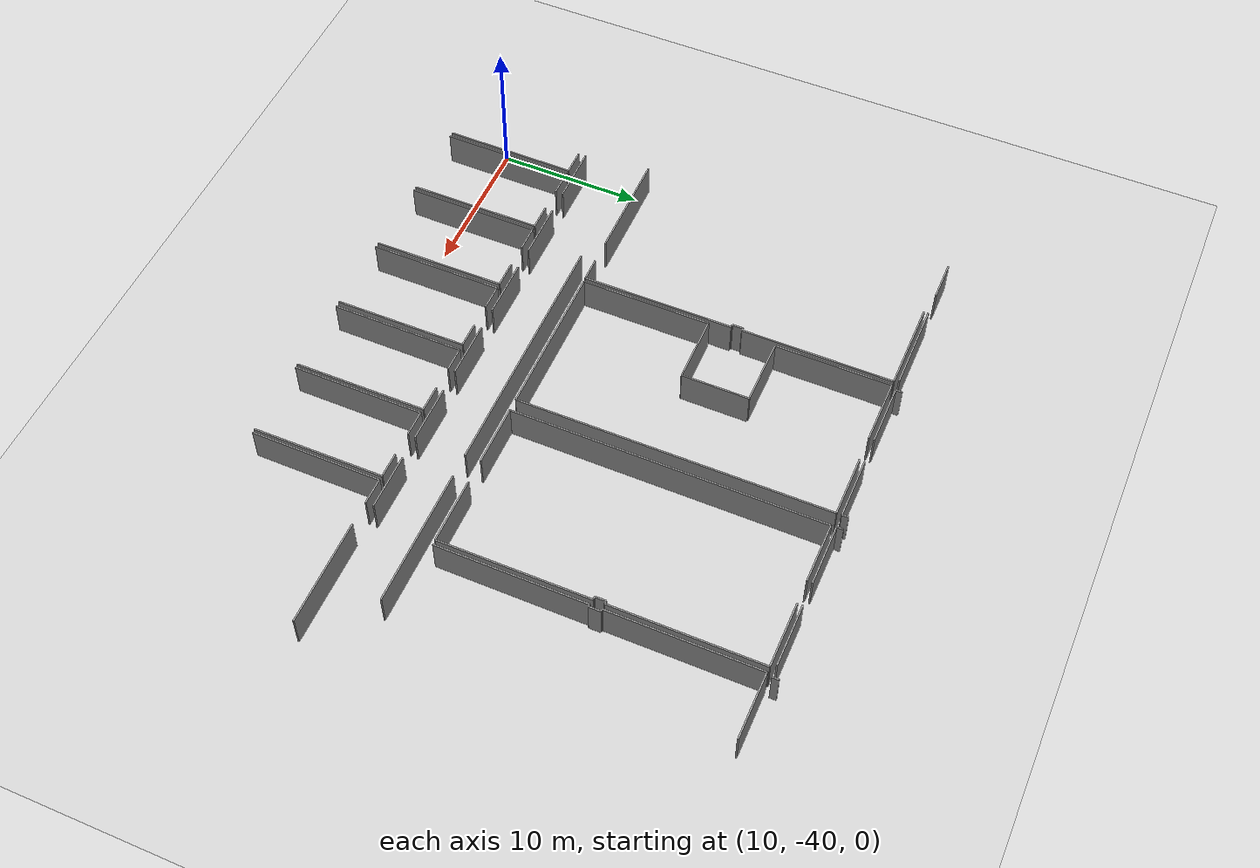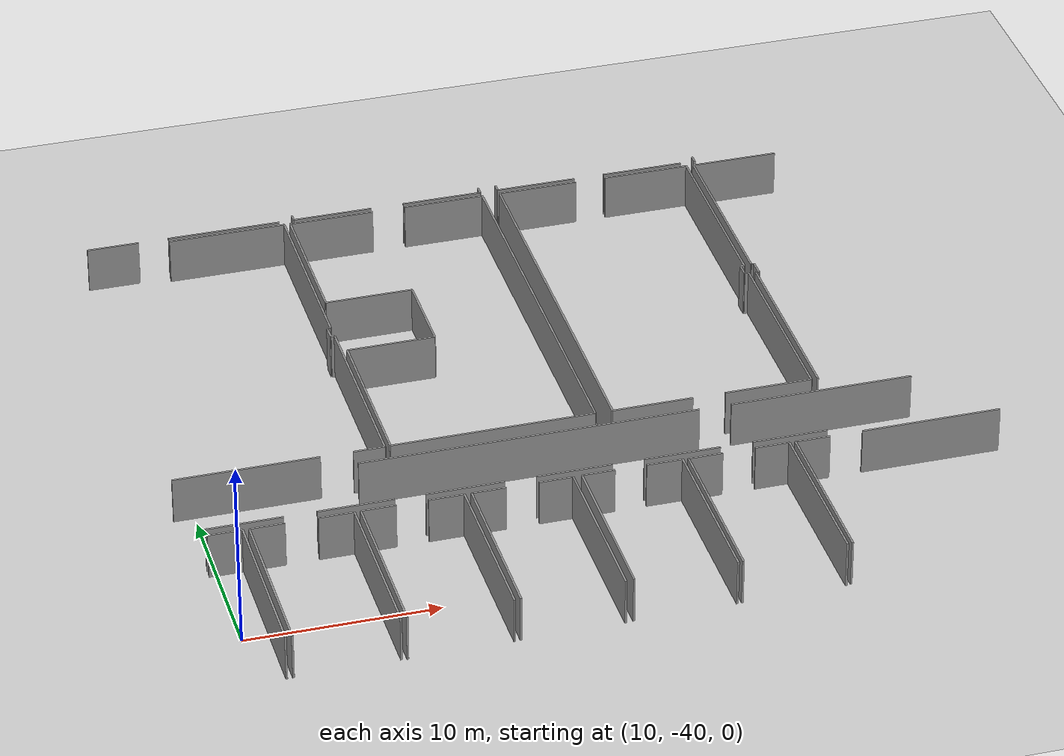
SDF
<sdf version="1.6">
 <world name="default">
  <model name="ground_plane">
   <static>1</static>
   <link name="link">
    <collision name="collision">
     <geometry><plane><normal>0 0 1</normal><size>100 100</size></plane></geometry>
     <surface><friction><ode><mu>100</mu><mu2>50</mu2></ode></friction></surface>
    </collision>
    <visual name="visual">
     <cast_shadows>0</cast_shadows>
     <geometry><plane><normal>0 0 1</normal><size>100 100</size></plane></geometry>
     <material>
      <script><uri>file://media/materials/scripts/gazebo.material</uri><name>Gazebo/Grey</name></script>
     </material>
    </visual>
   </link>
  </model>
  <model name="50015848">
   <static>1</static>
   <link name="Wall_614">
    <collision name="Wall_614_Collision">
     <geometry><box><size>0.465337553679 0.1 2.5</size></box></geometry>
     <pose>0.23266877684 0 1.25 0 0 0</pose>
    </collision>
    <visual name="Wall_614_Visual">
     <pose>0.23266877684 0 1.25 0 0 0</pose>
     <geometry><box><size>0.465337553679 0.1 2.5</size></box></geometry>
     <material>
      <script><uri>file://media/materials/scripts/gazebo.material</uri><name>Gazebo/Grey</name></script>
      <ambient>1 1 1 1</ambient>
     </material>
    </visual>
    <pose>174.505388553 -51.2470107644 0 0 0 1.57079632679</pose>
   </link>
   <link name="Wall_617">
    <collision name="Wall_617_Collision">
     <geometry><box><size>4.34966285863 0.1 2.5</size></box></geometry>
     <pose>2.17483142931 0 1.25 0 0 0</pose>
    </collision>
    <visual name="Wall_617_Visual">
     <pose>2.17483142931 0 1.25 0 0 0</pose>
     <geometry><box><size>4.34966285863 0.1 2.5</size></box></geometry>
     <material>
      <script><uri>file://media/materials/scripts/gazebo.material</uri><name>Gazebo/Grey</name></script>
      <ambient>1 1 1 1</ambient>
     </material>
    </visual>
    <pose>173.704114837 -51.2396526461 0 0 0 3.14159265359</pose>
   </link>
   <link name="Wall_618">
    <collision name="Wall_618_Collision">
     <geometry><box><size>4.28826062963 0.1 2.5</size></box></geometry>
     <pose>2.14413031481 0 1.25 0 0 0</pose>
    </collision>
    <visual name="Wall_618_Visual">
     <pose>2.14413031481 0 1.25 0 0 0</pose>
     <geometry><box><size>4.28826062963 0.1 2.5</size></box></geometry>
     <material>
      <script><uri>file://media/materials/scripts/gazebo.material</uri><name>Gazebo/Grey</name></script>
      <ambient>1 1 1 1</ambient>
     </material>
    </visual>
    <pose>167.708263294 -51.2396526461 0 0 0 3.14159265359</pose>
   </link>
   <link name="Wall_619">
    <collision name="Wall_619_Collision">
     <geometry><box><size>0.456964522452 0.1 2.5</size></box></geometry>
     <pose>0.228482261226 0 1.25 0 0 0</pose>
    </collision>
    <visual name="Wall_619_Visual">
     <pose>0.228482261226 0 1.25 0 0 0</pose>
     <geometry><box><size>0.456964522452 0.1 2.5</size></box></geometry>
     <material>
      <script><uri>file://media/materials/scripts/gazebo.material</uri><name>Gazebo/Grey</name></script>
      <ambient>1 1 1 1</ambient>
     </material>
    </visual>
    <pose>163.420002664 -51.2396526461 0 0 0 1.57079632679</pose>
   </link>
   <link name="Wall_621">
    <collision name="Wall_621_Collision">
     <geometry><box><size>0.449860132319 0.1 2.5</size></box></geometry>
     <pose>0.22493006616 0 1.25 0 0 0</pose>
    </collision>
    <visual name="Wall_621_Visual">
     <pose>0.22493006616 0 1.25 0 0 0</pose>
     <geometry><box><size>0.449860132319 0.1 2.5</size></box></geometry>
     <material>
      <script><uri>file://media/materials/scripts/gazebo.material</uri><name>Gazebo/Grey</name></script>
      <ambient>1 1 1 1</ambient>
     </material>
    </visual>
    <pose>162.462432366 -50.7826881236 0 0 0 -1.57079632679</pose>
   </link>
   <link name="Wall_622">
    <collision name="Wall_622_Collision">
     <geometry><box><size>4.28420097812 0.1 2.5</size></box></geometry>
     <pose>2.14210048906 0 1.25 0 0 0</pose>
    </collision>
    <visual name="Wall_622_Visual">
     <pose>2.14210048906 0 1.25 0 0 0</pose>
     <geometry><box><size>4.28420097812 0.1 2.5</size></box></geometry>
     <material>
      <script><uri>file://media/materials/scripts/gazebo.material</uri><name>Gazebo/Grey</name></script>
      <ambient>1 1 1 1</ambient>
     </material>
    </visual>
    <pose>162.462432366 -51.2325482559 0 0 0 3.14159265359</pose>
   </link>
   <link name="Wall_623">
    <collision name="Wall_623_Collision">
     <geometry><box><size>4.25121630965 0.1 2.5</size></box></geometry>
     <pose>2.12560815482 0 1.25 0 0 0</pose>
    </collision>
    <visual name="Wall_623_Visual">
     <pose>2.12560815482 0 1.25 0 0 0</pose>
     <geometry><box><size>4.25121630965 0.1 2.5</size></box></geometry>
     <material>
      <script><uri>file://media/materials/scripts/gazebo.material</uri><name>Gazebo/Grey</name></script>
      <ambient>1 1 1 1</ambient>
     </material>
    </visual>
    <pose>156.410506886 -51.2325482559 0 0 0 3.14159265359</pose>
   </link>
   <link name="Wall_624">
    <collision name="Wall_624_Collision">
     <geometry><box><size>0.46254654327 0.1 2.5</size></box></geometry>
     <pose>0.231273271635 0 1.25 0 0 0</pose>
    </collision>
    <visual name="Wall_624_Visual">
     <pose>0.231273271635 0 1.25 0 0 0</pose>
     <geometry><box><size>0.46254654327 0.1 2.5</size></box></geometry>
     <material>
      <script><uri>file://media/materials/scripts/gazebo.material</uri><name>Gazebo/Grey</name></script>
      <ambient>1 1 1 1</ambient>
     </material>
    </visual>
    <pose>152.159290576 -51.2325482559 0 0 0 1.57079632679</pose>
   </link>
   <link name="Wall_627">
    <collision name="Wall_627_Collision">
     <geometry><box><size>6.03670178688 0.1 2.5</size></box></geometry>
     <pose>3.01835089344 0 1.25 0 0 0</pose>
    </collision>
    <visual name="Wall_627_Visual">
     <pose>3.01835089344 0 1.25 0 0 0</pose>
     <geometry><box><size>6.03670178688 0.1 2.5</size></box></geometry>
     <material>
      <script><uri>file://media/materials/scripts/gazebo.material</uri><name>Gazebo/Grey</name></script>
      <ambient>1 1 1 1</ambient>
     </material>
    </visual>
    <pose>151.351927383 -51.2619807293 0 0 0 3.14159265359</pose>
   </link>
   <link name="Wall_628">
    <collision name="Wall_628_Collision">
     <geometry><box><size>2.75016016594 0.1 2.5</size></box></geometry>
     <pose>1.37508008297 0 1.25 0 0 0</pose>
    </collision>
    <visual name="Wall_628_Visual">
     <pose>1.37508008297 0 1.25 0 0 0</pose>
     <geometry><box><size>2.75016016594 0.1 2.5</size></box></geometry>
     <material>
      <script><uri>file://media/materials/scripts/gazebo.material</uri><name>Gazebo/Grey</name></script>
      <ambient>1 1 1 1</ambient>
     </material>
    </visual>
    <pose>143.694917189 -51.2619807293 0 0 0 3.14159265359</pose>
   </link>
   <link name="Wall_1331">
    <collision name="Wall_1331_Collision">
     <geometry><box><size>10.3566784439 0.1 2.5</size></box></geometry>
     <pose>5.17833922194 0 1.25 0 0 0</pose>
    </collision>
    <visual name="Wall_1331_Visual">
     <pose>5.17833922194 0 1.25 0 0 0</pose>
     <geometry><box><size>10.3566784439 0.1 2.5</size></box></geometry>
     <material>
      <script><uri>file://media/materials/scripts/gazebo.material</uri><name>Gazebo/Grey</name></script>
      <ambient>1 1 1 1</ambient>
     </material>
    </visual>
    <pose>174.32346542 -73.1612633128 0 0 0 1.57079632679</pose>
   </link>
   <link name="Wall_1332">
    <collision name="Wall_1332_Collision">
     <geometry><box><size>0.163908429486 0.1 2.5</size></box></geometry>
     <pose>0.0819542147429 0 1.25 0 0 0</pose>
    </collision>
    <visual name="Wall_1332_Visual">
     <pose>0.0819542147429 0 1.25 0 0 0</pose>
     <geometry><box><size>0.163908429486 0.1 2.5</size></box></geometry>
     <material>
      <script><uri>file://media/materials/scripts/gazebo.material</uri><name>Gazebo/Grey</name></script>
      <ambient>1 1 1 1</ambient>
     </material>
    </visual>
    <pose>174.32346542 -62.8045848689 0 0 0 0.0</pose>
   </link>
   <link name="Wall_1333">
    <collision name="Wall_1333_Collision">
     <geometry><box><size>0.820049603867 0.1 2.5</size></box></geometry>
     <pose>0.410024801933 0 1.25 0 0 0</pose>
    </collision>
    <visual name="Wall_1333_Visual">
     <pose>0.410024801933 0 1.25 0 0 0</pose>
     <geometry><box><size>0.820049603867 0.1 2.5</size></box></geometry>
     <material>
      <script><uri>file://media/materials/scripts/gazebo.material</uri><name>Gazebo/Grey</name></script>
      <ambient>1 1 1 1</ambient>
     </material>
    </visual>
    <pose>174.48737385 -62.8045848689 0 0 0 1.57079632679</pose>
   </link>
   <link name="Wall_1334">
    <collision name="Wall_1334_Collision">
     <geometry><box><size>0.163908429486 0.1 2.5</size></box></geometry>
     <pose>0.0819542147429 0 1.25 0 0 0</pose>
    </collision>
    <visual name="Wall_1334_Visual">
     <pose>0.0819542147429 0 1.25 0 0 0</pose>
     <geometry><box><size>0.163908429486 0.1 2.5</size></box></geometry>
     <material>
      <script><uri>file://media/materials/scripts/gazebo.material</uri><name>Gazebo/Grey</name></script>
      <ambient>1 1 1 1</ambient>
     </material>
    </visual>
    <pose>174.48737385 -61.9845352651 0 0 0 3.14159265359</pose>
   </link>
   <link name="Wall_1335">
    <collision name="Wall_1335_Collision">
     <geometry><box><size>10.3767229732 0.1 2.5</size></box></geometry>
     <pose>5.18836148659 0 1.25 0 0 0</pose>
    </collision>
    <visual name="Wall_1335_Visual">
     <pose>5.18836148659 0 1.25 0 0 0</pose>
     <geometry><box><size>10.3767229732 0.1 2.5</size></box></geometry>
     <material>
      <script><uri>file://media/materials/scripts/gazebo.material</uri><name>Gazebo/Grey</name></script>
      <ambient>1 1 1 1</ambient>
     </material>
    </visual>
    <pose>174.32346542 -61.9845352651 0 0 0 1.57079632679</pose>
   </link>
   <link name="Wall_1336">
    <collision name="Wall_1336_Collision">
     <geometry><box><size>4.6148088475 0.1 2.5</size></box></geometry>
     <pose>2.30740442375 0 1.25 0 0 0</pose>
    </collision>
    <visual name="Wall_1336_Visual">
     <pose>2.30740442375 0 1.25 0 0 0</pose>
     <geometry><box><size>4.6148088475 0.1 2.5</size></box></geometry>
     <material>
      <script><uri>file://media/materials/scripts/gazebo.material</uri><name>Gazebo/Grey</name></script>
      <ambient>1 1 1 1</ambient>
     </material>
    </visual>
    <pose>174.32346542 -51.6078122919 0 0 0 0.0</pose>
   </link>
   <link name="Wall_1343">
    <collision name="Wall_1343_Collision">
     <geometry><box><size>4.57421233246 0.1 2.5</size></box></geometry>
     <pose>2.28710616623 0 1.25 0 0 0</pose>
    </collision>
    <visual name="Wall_1343_Visual">
     <pose>2.28710616623 0 1.25 0 0 0</pose>
     <geometry><box><size>4.57421233246 0.1 2.5</size></box></geometry>
     <material>
      <script><uri>file://media/materials/scripts/gazebo.material</uri><name>Gazebo/Grey</name></script>
      <ambient>1 1 1 1</ambient>
     </material>
    </visual>
    <pose>173.971036924 -73.1711587133 0 0 0 3.14159265359</pose>
   </link>
   <link name="Wall_1344">
    <collision name="Wall_1344_Collision">
     <geometry><box><size>4.2385298987 0.1 2.5</size></box></geometry>
     <pose>2.11926494935 0 1.25 0 0 0</pose>
    </collision>
    <visual name="Wall_1344_Visual">
     <pose>2.11926494935 0 1.25 0 0 0</pose>
     <geometry><box><size>4.2385298987 0.1 2.5</size></box></geometry>
     <material>
      <script><uri>file://media/materials/scripts/gazebo.material</uri><name>Gazebo/Grey</name></script>
      <ambient>1 1 1 1</ambient>
     </material>
    </visual>
    <pose>167.675532354 -73.1711587133 0 0 0 3.14159265359</pose>
   </link>
   <link name="Wall_1345">
    <collision name="Wall_1345_Collision">
     <geometry><box><size>21.583644679 0.1 2.5</size></box></geometry>
     <pose>10.7918223395 0 1.25 0 0 0</pose>
    </collision>
    <visual name="Wall_1345_Visual">
     <pose>10.7918223395 0 1.25 0 0 0</pose>
     <geometry><box><size>21.583644679 0.1 2.5</size></box></geometry>
     <material>
      <script><uri>file://media/materials/scripts/gazebo.material</uri><name>Gazebo/Grey</name></script>
      <ambient>1 1 1 1</ambient>
     </material>
    </visual>
    <pose>163.437002455 -73.1711587133 0 0 0 1.57079632679</pose>
   </link>
   <link name="Wall_1346">
    <collision name="Wall_1346_Collision">
     <geometry><box><size>4.26238035129 0.1 2.5</size></box></geometry>
     <pose>2.13119017564 0 1.25 0 0 0</pose>
    </collision>
    <visual name="Wall_1346_Visual">
     <pose>2.13119017564 0 1.25 0 0 0</pose>
     <geometry><box><size>4.26238035129 0.1 2.5</size></box></geometry>
     <material>
      <script><uri>file://media/materials/scripts/gazebo.material</uri><name>Gazebo/Grey</name></script>
      <ambient>1 1 1 1</ambient>
     </material>
    </visual>
    <pose>163.437002455 -51.5875140343 0 0 0 0.0</pose>
   </link>
   <link name="Wall_1347">
    <collision name="Wall_1347_Collision">
     <geometry><box><size>4.5853763741 0.1 2.5</size></box></geometry>
     <pose>2.29268818705 0 1.25 0 0 0</pose>
    </collision>
    <visual name="Wall_1347_Visual">
     <pose>2.29268818705 0 1.25 0 0 0</pose>
     <geometry><box><size>4.5853763741 0.1 2.5</size></box></geometry>
     <material>
      <script><uri>file://media/materials/scripts/gazebo.material</uri><name>Gazebo/Grey</name></script>
      <ambient>1 1 1 1</ambient>
     </material>
    </visual>
    <pose>169.347347589 -51.5875140343 0 0 0 0.0</pose>
   </link>
   <link name="Wall_1348">
    <collision name="Wall_1348_Collision">
     <geometry><box><size>10.4142747496 0.1 2.5</size></box></geometry>
     <pose>5.2071373748 0 1.25 0 0 0</pose>
    </collision>
    <visual name="Wall_1348_Visual">
     <pose>5.2071373748 0 1.25 0 0 0</pose>
     <geometry><box><size>10.4142747496 0.1 2.5</size></box></geometry>
     <material>
      <script><uri>file://media/materials/scripts/gazebo.material</uri><name>Gazebo/Grey</name></script>
      <ambient>1 1 1 1</ambient>
     </material>
    </visual>
    <pose>173.932723963 -51.5875140343 0 0 0 -1.57079632679</pose>
   </link>
   <link name="Wall_1349">
    <collision name="Wall_1349_Collision">
     <geometry><box><size>0.209579508909 0.1 2.5</size></box></geometry>
     <pose>0.104789754455 0 1.25 0 0 0</pose>
    </collision>
    <visual name="Wall_1349_Visual">
     <pose>0.104789754455 0 1.25 0 0 0</pose>
     <geometry><box><size>0.209579508909 0.1 2.5</size></box></geometry>
     <material>
      <script><uri>file://media/materials/scripts/gazebo.material</uri><name>Gazebo/Grey</name></script>
      <ambient>1 1 1 1</ambient>
     </material>
    </visual>
    <pose>173.932723963 -62.0017887839 0 0 0 3.14159265359</pose>
   </link>
   <link name="Wall_1350">
    <collision name="Wall_1350_Collision">
     <geometry><box><size>0.733274552963 0.1 2.5</size></box></geometry>
     <pose>0.366637276481 0 1.25 0 0 0</pose>
    </collision>
    <visual name="Wall_1350_Visual">
     <pose>0.366637276481 0 1.25 0 0 0</pose>
     <geometry><box><size>0.733274552963 0.1 2.5</size></box></geometry>
     <material>
      <script><uri>file://media/materials/scripts/gazebo.material</uri><name>Gazebo/Grey</name></script>
      <ambient>1 1 1 1</ambient>
     </material>
    </visual>
    <pose>173.723144454 -62.0017887839 0 0 0 -1.57079632679</pose>
   </link>
   <link name="Wall_1351">
    <collision name="Wall_1351_Collision">
     <geometry><box><size>0.224549473831 0.1 2.5</size></box></geometry>
     <pose>0.112274736916 0 1.25 0 0 0</pose>
    </collision>
    <visual name="Wall_1351_Visual">
     <pose>0.112274736916 0 1.25 0 0 0</pose>
     <geometry><box><size>0.224549473831 0.1 2.5</size></box></geometry>
     <material>
      <script><uri>file://media/materials/scripts/gazebo.material</uri><name>Gazebo/Grey</name></script>
      <ambient>1 1 1 1</ambient>
     </material>
    </visual>
    <pose>173.723144454 -62.7350633369 0 0 0 0.0</pose>
   </link>
   <link name="Wall_1352">
    <collision name="Wall_1352_Collision">
     <geometry><box><size>10.4361214827 0.1 2.5</size></box></geometry>
     <pose>5.21806074135 0 1.25 0 0 0</pose>
    </collision>
    <visual name="Wall_1352_Visual">
     <pose>5.21806074135 0 1.25 0 0 0</pose>
     <geometry><box><size>10.4361214827 0.1 2.5</size></box></geometry>
     <material>
      <script><uri>file://media/materials/scripts/gazebo.material</uri><name>Gazebo/Grey</name></script>
      <ambient>1 1 1 1</ambient>
     </material>
    </visual>
    <pose>173.947693928 -62.7350633369 0 0 0 -1.56855957479</pose>
   </link>
   <link name="Wall_1353">
    <collision name="Wall_1353_Collision">
     <geometry><box><size>10.6515106344 0.1 2.5</size></box></geometry>
     <pose>5.32575531719 0 1.25 0 0 0</pose>
    </collision>
    <visual name="Wall_1353_Visual">
     <pose>5.32575531719 0 1.25 0 0 0</pose>
     <geometry><box><size>10.6515106344 0.1 2.5</size></box></geometry>
     <material>
      <script><uri>file://media/materials/scripts/gazebo.material</uri><name>Gazebo/Grey</name></script>
      <ambient>1 1 1 1</ambient>
     </material>
    </visual>
    <pose>162.540073201 -73.1747109084 0 0 0 3.14159265359</pose>
   </link>
   <link name="Wall_1354">
    <collision name="Wall_1354_Collision">
     <geometry><box><size>8.94468090505 0.1 2.5</size></box></geometry>
     <pose>4.47234045252 0 1.25 0 0 0</pose>
    </collision>
    <visual name="Wall_1354_Visual">
     <pose>4.47234045252 0 1.25 0 0 0</pose>
     <geometry><box><size>8.94468090505 0.1 2.5</size></box></geometry>
     <material>
      <script><uri>file://media/materials/scripts/gazebo.material</uri><name>Gazebo/Grey</name></script>
      <ambient>1 1 1 1</ambient>
     </material>
    </visual>
    <pose>151.888562566 -73.1747109084 0 0 0 1.57079632679</pose>
   </link>
   <link name="Wall_1355">
    <collision name="Wall_1355_Collision">
     <geometry><box><size>4.63536083324 0.1 2.5</size></box></geometry>
     <pose>2.31768041662 0 1.25 0 0 0</pose>
    </collision>
    <visual name="Wall_1355_Visual">
     <pose>2.31768041662 0 1.25 0 0 0</pose>
     <geometry><box><size>4.63536083324 0.1 2.5</size></box></geometry>
     <material>
      <script><uri>file://media/materials/scripts/gazebo.material</uri><name>Gazebo/Grey</name></script>
      <ambient>1 1 1 1</ambient>
     </material>
    </visual>
    <pose>151.888562566 -64.2300300034 0 0 0 0.0</pose>
   </link>
   <link name="Wall_1356">
    <collision name="Wall_1356_Collision">
     <geometry><box><size>4.65489790611 0.1 2.5</size></box></geometry>
     <pose>2.32744895305 0 1.25 0 0 0</pose>
    </collision>
    <visual name="Wall_1356_Visual">
     <pose>2.32744895305 0 1.25 0 0 0</pose>
     <geometry><box><size>4.65489790611 0.1 2.5</size></box></geometry>
     <material>
      <script><uri>file://media/materials/scripts/gazebo.material</uri><name>Gazebo/Grey</name></script>
      <ambient>1 1 1 1</ambient>
     </material>
    </visual>
    <pose>156.523923399 -64.2300300034 0 0 0 1.57079632679</pose>
   </link>
   <link name="Wall_1357">
    <collision name="Wall_1357_Collision">
     <geometry><box><size>4.64221149516 0.1 2.5</size></box></geometry>
     <pose>2.32110574758 0 1.25 0 0 0</pose>
    </collision>
    <visual name="Wall_1357_Visual">
     <pose>2.32110574758 0 1.25 0 0 0</pose>
     <geometry><box><size>4.64221149516 0.1 2.5</size></box></geometry>
     <material>
      <script><uri>file://media/materials/scripts/gazebo.material</uri><name>Gazebo/Grey</name></script>
      <ambient>1 1 1 1</ambient>
     </material>
    </visual>
    <pose>156.523923399 -59.5751320973 0 0 0 3.14159265359</pose>
   </link>
   <link name="Wall_1358">
    <collision name="Wall_1358_Collision">
     <geometry><box><size>7.99446872483 0.1 2.5</size></box></geometry>
     <pose>3.99723436241 0 1.25 0 0 0</pose>
    </collision>
    <visual name="Wall_1358_Visual">
     <pose>3.99723436241 0 1.25 0 0 0</pose>
     <geometry><box><size>7.99446872483 0.1 2.5</size></box></geometry>
     <material>
      <script><uri>file://media/materials/scripts/gazebo.material</uri><name>Gazebo/Grey</name></script>
      <ambient>1 1 1 1</ambient>
     </material>
    </visual>
    <pose>151.881711904 -59.5751320973 0 0 0 1.57079632679</pose>
   </link>
   <link name="Wall_1359">
    <collision name="Wall_1359_Collision">
     <geometry><box><size>4.51686975496 0.1 2.5</size></box></geometry>
     <pose>2.25843487748 0 1.25 0 0 0</pose>
    </collision>
    <visual name="Wall_1359_Visual">
     <pose>2.25843487748 0 1.25 0 0 0</pose>
     <geometry><box><size>4.51686975496 0.1 2.5</size></box></geometry>
     <material>
      <script><uri>file://media/materials/scripts/gazebo.material</uri><name>Gazebo/Grey</name></script>
      <ambient>1 1 1 1</ambient>
     </material>
    </visual>
    <pose>151.881711904 -51.5806633724 0 0 0 0.0</pose>
   </link>
   <link name="Wall_1360">
    <collision name="Wall_1360_Collision">
     <geometry><box><size>4.30855888715 0.1 2.5</size></box></geometry>
     <pose>2.15427944357 0 1.25 0 0 0</pose>
    </collision>
    <visual name="Wall_1360_Visual">
     <pose>2.15427944357 0 1.25 0 0 0</pose>
     <geometry><box><size>4.30855888715 0.1 2.5</size></box></geometry>
     <material>
      <script><uri>file://media/materials/scripts/gazebo.material</uri><name>Gazebo/Grey</name></script>
      <ambient>1 1 1 1</ambient>
     </material>
    </visual>
    <pose>158.168335987 -51.5806633724 0 0 0 0.0</pose>
   </link>
   <link name="Wall_1361">
    <collision name="Wall_1361_Collision">
     <geometry><box><size>21.5941399571 0.1 2.5</size></box></geometry>
     <pose>10.7970699786 0 1.25 0 0 0</pose>
    </collision>
    <visual name="Wall_1361_Visual">
     <pose>10.7970699786 0 1.25 0 0 0</pose>
     <geometry><box><size>21.5941399571 0.1 2.5</size></box></geometry>
     <material>
      <script><uri>file://media/materials/scripts/gazebo.material</uri><name>Gazebo/Grey</name></script>
      <ambient>1 1 1 1</ambient>
     </material>
    </visual>
    <pose>162.476894874 -51.5806633724 0 0 0 -1.56787060635</pose>
   </link>
   <link name="Wall_1362">
    <collision name="Wall_1362_Collision">
     <geometry><box><size>1.62715906856 0.1 2.5</size></box></geometry>
     <pose>0.813579534282 0 1.25 0 0 0</pose>
    </collision>
    <visual name="Wall_1362_Visual">
     <pose>0.813579534282 0 1.25 0 0 0</pose>
     <geometry><box><size>1.62715906856 0.1 2.5</size></box></geometry>
     <material>
      <script><uri>file://media/materials/scripts/gazebo.material</uri><name>Gazebo/Grey</name></script>
      <ambient>1 1 1 1</ambient>
     </material>
    </visual>
    <pose>151.598043755 -73.2038896536 0 0 0 3.14159265359</pose>
   </link>
   <link name="Wall_1363">
    <collision name="Wall_1363_Collision">
     <geometry><box><size>7.55754873168 0.1 2.5</size></box></geometry>
     <pose>3.77877436584 0 1.25 0 0 0</pose>
    </collision>
    <visual name="Wall_1363_Visual">
     <pose>3.77877436584 0 1.25 0 0 0</pose>
     <geometry><box><size>7.55754873168 0.1 2.5</size></box></geometry>
     <material>
      <script><uri>file://media/materials/scripts/gazebo.material</uri><name>Gazebo/Grey</name></script>
      <ambient>1 1 1 1</ambient>
     </material>
    </visual>
    <pose>148.289174051 -73.2038896536 0 0 0 3.14159265359</pose>
   </link>
   <link name="Wall_1371">
    <collision name="Wall_1371_Collision">
     <geometry><box><size>6.25110213195 0.1 2.5</size></box></geometry>
     <pose>3.12555106598 0 1.25 0 0 0</pose>
    </collision>
    <visual name="Wall_1371_Visual">
     <pose>3.12555106598 0 1.25 0 0 0</pose>
     <geometry><box><size>6.25110213195 0.1 2.5</size></box></geometry>
     <material>
      <script><uri>file://media/materials/scripts/gazebo.material</uri><name>Gazebo/Grey</name></script>
      <ambient>1 1 1 1</ambient>
     </material>
    </visual>
    <pose>145.307867478 -51.5573203763 0 0 0 0.0</pose>
   </link>
   <link name="Wall_1372">
    <collision name="Wall_1372_Collision">
     <geometry><box><size>10.4393938433 0.1 2.5</size></box></geometry>
     <pose>5.21969692164 0 1.25 0 0 0</pose>
    </collision>
    <visual name="Wall_1372_Visual">
     <pose>5.21969692164 0 1.25 0 0 0</pose>
     <geometry><box><size>10.4393938433 0.1 2.5</size></box></geometry>
     <material>
      <script><uri>file://media/materials/scripts/gazebo.material</uri><name>Gazebo/Grey</name></script>
      <ambient>1 1 1 1</ambient>
     </material>
    </visual>
    <pose>151.55896961 -51.5573203763 0 0 0 -1.57079632679</pose>
   </link>
   <link name="Wall_1373">
    <collision name="Wall_1373_Collision">
     <geometry><box><size>0.179893307284 0.1 2.5</size></box></geometry>
     <pose>0.0899466536419 0 1.25 0 0 0</pose>
    </collision>
    <visual name="Wall_1373_Visual">
     <pose>0.0899466536419 0 1.25 0 0 0</pose>
     <geometry><box><size>0.179893307284 0.1 2.5</size></box></geometry>
     <material>
      <script><uri>file://media/materials/scripts/gazebo.material</uri><name>Gazebo/Grey</name></script>
      <ambient>1 1 1 1</ambient>
     </material>
    </visual>
    <pose>151.55896961 -61.9967142196 0 0 0 3.14159265359</pose>
   </link>
   <link name="Wall_1374">
    <collision name="Wall_1374_Collision">
     <geometry><box><size>0.754333995141 0.1 2.5</size></box></geometry>
     <pose>0.377166997571 0 1.25 0 0 0</pose>
    </collision>
    <visual name="Wall_1374_Visual">
     <pose>0.377166997571 0 1.25 0 0 0</pose>
     <geometry><box><size>0.754333995141 0.1 2.5</size></box></geometry>
     <material>
      <script><uri>file://media/materials/scripts/gazebo.material</uri><name>Gazebo/Grey</name></script>
      <ambient>1 1 1 1</ambient>
     </material>
    </visual>
    <pose>151.379076302 -61.9967142196 0 0 0 -1.57079632679</pose>
   </link>
   <link name="Wall_1375">
    <collision name="Wall_1375_Collision">
     <geometry><box><size>0.202982575215 0.1 2.5</size></box></geometry>
     <pose>0.101491287607 0 1.25 0 0 0</pose>
    </collision>
    <visual name="Wall_1375_Visual">
     <pose>0.101491287607 0 1.25 0 0 0</pose>
     <geometry><box><size>0.202982575215 0.1 2.5</size></box></geometry>
     <material>
      <script><uri>file://media/materials/scripts/gazebo.material</uri><name>Gazebo/Grey</name></script>
      <ambient>1 1 1 1</ambient>
     </material>
    </visual>
    <pose>151.379076302 -62.7510482147 0 0 0 0.0</pose>
   </link>
   <link name="Wall_1376">
    <collision name="Wall_1376_Collision">
     <geometry><box><size>10.4528536612 0.1 2.5</size></box></geometry>
     <pose>5.22642683061 0 1.25 0 0 0</pose>
    </collision>
    <visual name="Wall_1376_Visual">
     <pose>5.22642683061 0 1.25 0 0 0</pose>
     <geometry><box><size>10.4528536612 0.1 2.5</size></box></geometry>
     <material>
      <script><uri>file://media/materials/scripts/gazebo.material</uri><name>Gazebo/Grey</name></script>
      <ambient>1 1 1 1</ambient>
     </material>
    </visual>
    <pose>151.582058878 -62.7510482147 0 0 0 -1.56926709042</pose>
   </link>
   <link name="Wall_1478">
    <collision name="Wall_1478_Collision">
     <geometry><box><size>17.7168266212 0.1 2.5</size></box></geometry>
     <pose>8.85841331058 0 1.25 0 0 0</pose>
    </collision>
    <visual name="Wall_1478_Visual">
     <pose>8.85841331058 0 1.25 0 0 0</pose>
     <geometry><box><size>17.7168266212 0.1 2.5</size></box></geometry>
     <material>
      <script><uri>file://media/materials/scripts/gazebo.material</uri><name>Gazebo/Grey</name></script>
      <ambient>1 1 1 1</ambient>
     </material>
    </visual>
    <pose>149.970884687 -74.2462051773 0 0 0 0.0</pose>
   </link>
   <link name="Wall_1479">
    <collision name="Wall_1479_Collision">
     <geometry><box><size>9.59752361258 0.1 2.5</size></box></geometry>
     <pose>4.79876180629 0 1.25 0 0 0</pose>
    </collision>
    <visual name="Wall_1479_Visual">
     <pose>4.79876180629 0 1.25 0 0 0</pose>
     <geometry><box><size>9.59752361258 0.1 2.5</size></box></geometry>
     <material>
      <script><uri>file://media/materials/scripts/gazebo.material</uri><name>Gazebo/Grey</name></script>
      <ambient>1 1 1 1</ambient>
     </material>
    </visual>
    <pose>169.364601108 -74.2462051773 0 0 0 0.0</pose>
   </link>
   <link name="Wall_1498">
    <collision name="Wall_1498_Collision">
     <geometry><box><size>3.89447443371 0.1 2.5</size></box></geometry>
     <pose>1.94723721686 0 1.25 0 0 0</pose>
    </collision>
    <visual name="Wall_1498_Visual">
     <pose>1.94723721686 0 1.25 0 0 0</pose>
     <geometry><box><size>3.89447443371 0.1 2.5</size></box></geometry>
     <material>
      <script><uri>file://media/materials/scripts/gazebo.material</uri><name>Gazebo/Grey</name></script>
      <ambient>1 1 1 1</ambient>
     </material>
    </visual>
    <pose>173.299418328 -77.7331920913 0 0 0 3.14159265359</pose>
   </link>
   <link name="Wall_1499">
    <collision name="Wall_1499_Collision">
     <geometry><box><size>3.97135408407 0.1 2.5</size></box></geometry>
     <pose>1.98567704204 0 1.25 0 0 0</pose>
    </collision>
    <visual name="Wall_1499_Visual">
     <pose>1.98567704204 0 1.25 0 0 0</pose>
     <geometry><box><size>3.97135408407 0.1 2.5</size></box></geometry>
     <material>
      <script><uri>file://media/materials/scripts/gazebo.material</uri><name>Gazebo/Grey</name></script>
      <ambient>1 1 1 1</ambient>
     </material>
    </visual>
    <pose>167.709785663 -77.7331920913 0 0 0 3.14159265359</pose>
   </link>
   <link name="Wall_1500">
    <collision name="Wall_1500_Collision">
     <geometry><box><size>3.92060844027 0.1 2.5</size></box></geometry>
     <pose>1.96030422013 0 1.25 0 0 0</pose>
    </collision>
    <visual name="Wall_1500_Visual">
     <pose>1.96030422013 0 1.25 0 0 0</pose>
     <geometry><box><size>3.92060844027 0.1 2.5</size></box></geometry>
     <material>
      <script><uri>file://media/materials/scripts/gazebo.material</uri><name>Gazebo/Grey</name></script>
      <ambient>1 1 1 1</ambient>
     </material>
    </visual>
    <pose>162.102645751 -77.7331920913 0 0 0 3.14159265359</pose>
   </link>
   <link name="Wall_1501">
    <collision name="Wall_1501_Collision">
     <geometry><box><size>4.03301004129 0.1 2.5</size></box></geometry>
     <pose>2.01650502065 0 1.25 0 0 0</pose>
    </collision>
    <visual name="Wall_1501_Visual">
     <pose>2.01650502065 0 1.25 0 0 0</pose>
     <geometry><box><size>4.03301004129 0.1 2.5</size></box></geometry>
     <material>
      <script><uri>file://media/materials/scripts/gazebo.material</uri><name>Gazebo/Grey</name></script>
      <ambient>1 1 1 1</ambient>
     </material>
    </visual>
    <pose>156.558176709 -77.7331920913 0 0 0 3.14159265359</pose>
   </link>
   <link name="Wall_1502">
    <collision name="Wall_1502_Collision">
     <geometry><box><size>3.93151875369 0.1 2.5</size></box></geometry>
     <pose>1.96575937684 0 1.25 0 0 0</pose>
    </collision>
    <visual name="Wall_1502_Visual">
     <pose>1.96575937684 0 1.25 0 0 0</pose>
     <geometry><box><size>3.93151875369 0.1 2.5</size></box></geometry>
     <material>
      <script><uri>file://media/materials/scripts/gazebo.material</uri><name>Gazebo/Grey</name></script>
      <ambient>1 1 1 1</ambient>
     </material>
    </visual>
    <pose>150.958394915 -77.7331920913 0 0 0 3.14159265359</pose>
   </link>
   <link name="Wall_1503">
    <collision name="Wall_1503_Collision">
     <geometry><box><size>3.93938432848 0.1 2.5</size></box></geometry>
     <pose>1.96969216424 0 1.25 0 0 0</pose>
    </collision>
    <visual name="Wall_1503_Visual">
     <pose>1.96969216424 0 1.25 0 0 0</pose>
     <geometry><box><size>3.93938432848 0.1 2.5</size></box></geometry>
     <material>
      <script><uri>file://media/materials/scripts/gazebo.material</uri><name>Gazebo/Grey</name></script>
      <ambient>1 1 1 1</ambient>
     </material>
    </visual>
    <pose>145.345926711 -77.7331920913 0 0 0 3.14159265359</pose>
   </link>
   <link name="Wall_1563">
    <collision name="Wall_1563_Collision">
     <geometry><box><size>1.77609753313 0.1 2.5</size></box></geometry>
     <pose>0.888048766564 0 1.25 0 0 0</pose>
    </collision>
    <visual name="Wall_1563_Visual">
     <pose>0.888048766564 0 1.25 0 0 0</pose>
     <geometry><box><size>1.77609753313 0.1 2.5</size></box></geometry>
     <material>
      <script><uri>file://media/materials/scripts/gazebo.material</uri><name>Gazebo/Grey</name></script>
      <ambient>1 1 1 1</ambient>
     </material>
    </visual>
    <pose>141.398169351 -78.2502902017 0 0 0 0.0</pose>
   </link>
   <link name="Wall_1564">
    <collision name="Wall_1564_Collision">
     <geometry><box><size>9.075606709 0.1 2.5</size></box></geometry>
     <pose>4.5378033545 0 1.25 0 0 0</pose>
    </collision>
    <visual name="Wall_1564_Visual">
     <pose>4.5378033545 0 1.25 0 0 0</pose>
     <geometry><box><size>9.075606709 0.1 2.5</size></box></geometry>
     <material>
      <script><uri>file://media/materials/scripts/gazebo.material</uri><name>Gazebo/Grey</name></script>
      <ambient>1 1 1 1</ambient>
     </material>
    </visual>
    <pose>143.174266884 -78.2502902017 0 0 0 -1.57146729876</pose>
   </link>
   <link name="Wall_1565">
    <collision name="Wall_1565_Collision">
     <geometry><box><size>9.06164961402 0.1 2.5</size></box></geometry>
     <pose>4.53082480701 0 1.25 0 0 0</pose>
    </collision>
    <visual name="Wall_1565_Visual">
     <pose>4.53082480701 0 1.25 0 0 0</pose>
     <geometry><box><size>9.06164961402 0.1 2.5</size></box></geometry>
     <material>
      <script><uri>file://media/materials/scripts/gazebo.material</uri><name>Gazebo/Grey</name></script>
      <ambient>1 1 1 1</ambient>
     </material>
    </visual>
    <pose>143.50106883 -87.3258948677 0 0 0 1.57079632679</pose>
   </link>
   <link name="Wall_1566">
    <collision name="Wall_1566_Collision">
     <geometry><box><size>1.78802275942 0.1 2.5</size></box></geometry>
     <pose>0.894011379711 0 1.25 0 0 0</pose>
    </collision>
    <visual name="Wall_1566_Visual">
     <pose>0.894011379711 0 1.25 0 0 0</pose>
     <geometry><box><size>1.78802275942 0.1 2.5</size></box></geometry>
     <material>
      <script><uri>file://media/materials/scripts/gazebo.material</uri><name>Gazebo/Grey</name></script>
      <ambient>1 1 1 1</ambient>
     </material>
    </visual>
    <pose>143.50106883 -78.2642452537 0 0 0 0.0</pose>
   </link>
   <link name="Wall_1567">
    <collision name="Wall_1567_Collision">
     <geometry><box><size>1.82252979721 0.1 2.5</size></box></geometry>
     <pose>0.911264898604 0 1.25 0 0 0</pose>
    </collision>
    <visual name="Wall_1567_Visual">
     <pose>0.911264898604 0 1.25 0 0 0</pose>
     <geometry><box><size>1.82252979721 0.1 2.5</size></box></geometry>
     <material>
      <script><uri>file://media/materials/scripts/gazebo.material</uri><name>Gazebo/Grey</name></script>
      <ambient>1 1 1 1</ambient>
     </material>
    </visual>
    <pose>146.957862086 -78.2642452537 0 0 0 0.0</pose>
   </link>
   <link name="Wall_1568">
    <collision name="Wall_1568_Collision">
     <geometry><box><size>9.06168657127 0.1 2.5</size></box></geometry>
     <pose>4.53084328564 0 1.25 0 0 0</pose>
    </collision>
    <visual name="Wall_1568_Visual">
     <pose>4.53084328564 0 1.25 0 0 0</pose>
     <geometry><box><size>9.06168657127 0.1 2.5</size></box></geometry>
     <material>
      <script><uri>file://media/materials/scripts/gazebo.material</uri><name>Gazebo/Grey</name></script>
      <ambient>1 1 1 1</ambient>
     </material>
    </visual>
    <pose>148.780391883 -78.2642452537 0 0 0 -1.56794031171</pose>
   </link>
   <link name="Wall_1569">
    <collision name="Wall_1569_Collision">
     <geometry><box><size>9.1134101707 0.1 2.5</size></box></geometry>
     <pose>4.55670508535 0 1.25 0 0 0</pose>
    </collision>
    <visual name="Wall_1569_Visual">
     <pose>4.55670508535 0 1.25 0 0 0</pose>
     <geometry><box><size>9.1134101707 0.1 2.5</size></box></geometry>
     <material>
      <script><uri>file://media/materials/scripts/gazebo.material</uri><name>Gazebo/Grey</name></script>
      <ambient>1 1 1 1</ambient>
     </material>
    </visual>
    <pose>149.106686373 -87.3637003723 0 0 0 1.57079632679</pose>
   </link>
   <link name="Wall_1570">
    <collision name="Wall_1570_Collision">
     <geometry><box><size>1.78497802079 0.1 2.5</size></box></geometry>
     <pose>0.892489010397 0 1.25 0 0 0</pose>
    </collision>
    <visual name="Wall_1570_Visual">
     <pose>0.892489010397 0 1.25 0 0 0</pose>
     <geometry><box><size>1.78497802079 0.1 2.5</size></box></geometry>
     <material>
      <script><uri>file://media/materials/scripts/gazebo.material</uri><name>Gazebo/Grey</name></script>
      <ambient>1 1 1 1</ambient>
     </material>
    </visual>
    <pose>149.106686373 -78.2502902017 0 0 0 0.0</pose>
   </link>
   <link name="Wall_1571">
    <collision name="Wall_1571_Collision">
     <geometry><box><size>1.83115655665 0.1 2.5</size></box></geometry>
     <pose>0.915578278327 0 1.25 0 0 0</pose>
    </collision>
    <visual name="Wall_1571_Visual">
     <pose>0.915578278327 0 1.25 0 0 0</pose>
     <geometry><box><size>1.83115655665 0.1 2.5</size></box></geometry>
     <material>
      <script><uri>file://media/materials/scripts/gazebo.material</uri><name>Gazebo/Grey</name></script>
      <ambient>1 1 1 1</ambient>
     </material>
    </visual>
    <pose>152.530241232 -78.2502902017 0 0 0 0.0</pose>
   </link>
   <link name="Wall_1572">
    <collision name="Wall_1572_Collision">
     <geometry><box><size>9.11351710636 0.1 2.5</size></box></geometry>
     <pose>4.55675855318 0 1.25 0 0 0</pose>
    </collision>
    <visual name="Wall_1572_Visual">
     <pose>4.55675855318 0 1.25 0 0 0</pose>
     <geometry><box><size>9.11351710636 0.1 2.5</size></box></geometry>
     <material>
      <script><uri>file://media/materials/scripts/gazebo.material</uri><name>Gazebo/Grey</name></script>
      <ambient>1 1 1 1</ambient>
     </material>
    </visual>
    <pose>154.361397789 -78.2502902017 0 0 0 -1.56595199696</pose>
   </link>
   <link name="Wall_1573">
    <collision name="Wall_1573_Collision">
     <geometry><box><size>9.1134101707 0.1 2.5</size></box></geometry>
     <pose>4.55670508535 0 1.25 0 0 0</pose>
    </collision>
    <visual name="Wall_1573_Visual">
     <pose>4.55670508535 0 1.25 0 0 0</pose>
     <geometry><box><size>9.1134101707 0.1 2.5</size></box></geometry>
     <material>
      <script><uri>file://media/materials/scripts/gazebo.material</uri><name>Gazebo/Grey</name></script>
      <ambient>1 1 1 1</ambient>
     </material>
    </visual>
    <pose>154.728035065 -87.3637003723 0 0 0 1.57079632679</pose>
   </link>
   <link name="Wall_1574">
    <collision name="Wall_1574_Collision">
     <geometry><box><size>1.76899314299 0.1 2.5</size></box></geometry>
     <pose>0.884496571497 0 1.25 0 0 0</pose>
    </collision>
    <visual name="Wall_1574_Visual">
     <pose>0.884496571497 0 1.25 0 0 0</pose>
     <geometry><box><size>1.76899314299 0.1 2.5</size></box></geometry>
     <material>
      <script><uri>file://media/materials/scripts/gazebo.material</uri><name>Gazebo/Grey</name></script>
      <ambient>1 1 1 1</ambient>
     </material>
    </visual>
    <pose>154.728035065 -78.2502902017 0 0 0 0.0</pose>
   </link>
   <link name="Wall_1575">
    <collision name="Wall_1575_Collision">
     <geometry><box><size>1.74590387506 0.1 2.5</size></box></geometry>
     <pose>0.872951937532 0 1.25 0 0 0</pose>
    </collision>
    <visual name="Wall_1575_Visual">
     <pose>0.872951937532 0 1.25 0 0 0</pose>
     <geometry><box><size>1.74590387506 0.1 2.5</size></box></geometry>
     <material>
      <script><uri>file://media/materials/scripts/gazebo.material</uri><name>Gazebo/Grey</name></script>
      <ambient>1 1 1 1</ambient>
     </material>
    </visual>
    <pose>158.181276126 -78.2502902017 0 0 0 0.0</pose>
   </link>
   <link name="Wall_1576">
    <collision name="Wall_1576_Collision">
     <geometry><box><size>9.11349070457 0.1 2.5</size></box></geometry>
     <pose>4.55674535229 0 1.25 0 0 0</pose>
    </collision>
    <visual name="Wall_1576_Visual">
     <pose>4.55674535229 0 1.25 0 0 0</pose>
     <geometry><box><size>9.11349070457 0.1 2.5</size></box></geometry>
     <material>
      <script><uri>file://media/materials/scripts/gazebo.material</uri><name>Gazebo/Grey</name></script>
      <ambient>1 1 1 1</ambient>
     </material>
    </visual>
    <pose>159.927180001 -78.2502902017 0 0 0 -1.56659233129</pose>
   </link>
   <link name="Wall_1577">
    <collision name="Wall_1577_Collision">
     <geometry><box><size>9.09641038002 0.1 2.5</size></box></geometry>
     <pose>4.54820519001 0 1.25 0 0 0</pose>
    </collision>
    <visual name="Wall_1577_Visual">
     <pose>4.54820519001 0 1.25 0 0 0</pose>
     <geometry><box><size>9.09641038002 0.1 2.5</size></box></geometry>
     <material>
      <script><uri>file://media/materials/scripts/gazebo.material</uri><name>Gazebo/Grey</name></script>
      <ambient>1 1 1 1</ambient>
     </material>
    </visual>
    <pose>160.384398252 -87.3299545192 0 0 0 1.57079632679</pose>
   </link>
   <link name="Wall_1578">
    <collision name="Wall_1578_Collision">
     <geometry><box><size>1.70150143674 0.1 2.5</size></box></geometry>
     <pose>0.850750718368 0 1.25 0 0 0</pose>
    </collision>
    <visual name="Wall_1578_Visual">
     <pose>0.850750718368 0 1.25 0 0 0</pose>
     <geometry><box><size>1.70150143674 0.1 2.5</size></box></geometry>
     <material>
      <script><uri>file://media/materials/scripts/gazebo.material</uri><name>Gazebo/Grey</name></script>
      <ambient>1 1 1 1</ambient>
     </material>
    </visual>
    <pose>160.384398252 -78.2335441392 0 0 0 0.0</pose>
   </link>
   <link name="Wall_1579">
    <collision name="Wall_1579_Collision">
     <geometry><box><size>1.87530526676 0.1 2.5</size></box></geometry>
     <pose>0.937652633382 0 1.25 0 0 0</pose>
    </collision>
    <visual name="Wall_1579_Visual">
     <pose>0.937652633382 0 1.25 0 0 0</pose>
     <geometry><box><size>1.87530526676 0.1 2.5</size></box></geometry>
     <material>
      <script><uri>file://media/materials/scripts/gazebo.material</uri><name>Gazebo/Grey</name></script>
      <ambient>1 1 1 1</ambient>
     </material>
    </visual>
    <pose>163.716357224 -78.2335441392 0 0 0 0.0</pose>
   </link>
   <link name="Wall_1580">
    <collision name="Wall_1580_Collision">
     <geometry><box><size>9.09647203723 0.1 2.5</size></box></geometry>
     <pose>4.54823601862 0 1.25 0 0 0</pose>
    </collision>
    <visual name="Wall_1580_Visual">
     <pose>4.54823601862 0 1.25 0 0 0</pose>
     <geometry><box><size>9.09647203723 0.1 2.5</size></box></geometry>
     <material>
      <script><uri>file://media/materials/scripts/gazebo.material</uri><name>Gazebo/Grey</name></script>
      <ambient>1 1 1 1</ambient>
     </material>
    </visual>
    <pose>165.591662491 -78.2335441392 0 0 0 -1.56711443777</pose>
   </link>
   <link name="Wall_1581">
    <collision name="Wall_1581_Collision">
     <geometry><box><size>9.05023184416 0.1 2.5</size></box></geometry>
     <pose>4.52511592208 0 1.25 0 0 0</pose>
    </collision>
    <visual name="Wall_1581_Visual">
     <pose>4.52511592208 0 1.25 0 0 0</pose>
     <geometry><box><size>9.05023184416 0.1 2.5</size></box></geometry>
     <material>
      <script><uri>file://media/materials/scripts/gazebo.material</uri><name>Gazebo/Grey</name></script>
      <ambient>1 1 1 1</ambient>
     </material>
    </visual>
    <pose>165.885987225 -87.3091488053 0 0 0 1.57079632679</pose>
   </link>
   <link name="Wall_1582">
    <collision name="Wall_1582_Collision">
     <geometry><box><size>1.78447056435 0.1 2.5</size></box></geometry>
     <pose>0.892235282177 0 1.25 0 0 0</pose>
    </collision>
    <visual name="Wall_1582_Visual">
     <pose>0.892235282177 0 1.25 0 0 0</pose>
     <geometry><box><size>1.78447056435 0.1 2.5</size></box></geometry>
     <material>
      <script><uri>file://media/materials/scripts/gazebo.material</uri><name>Gazebo/Grey</name></script>
      <ambient>1 1 1 1</ambient>
     </material>
    </visual>
    <pose>165.885987225 -78.2589169611 0 0 0 0.0</pose>
   </link>
   <link name="Wall_1583">
    <collision name="Wall_1583_Collision">
     <geometry><box><size>1.78447056435 0.1 2.5</size></box></geometry>
     <pose>0.892235282177 0 1.25 0 0 0</pose>
    </collision>
    <visual name="Wall_1583_Visual">
     <pose>0.892235282177 0 1.25 0 0 0</pose>
     <geometry><box><size>1.78447056435 0.1 2.5</size></box></geometry>
     <material>
      <script><uri>file://media/materials/scripts/gazebo.material</uri><name>Gazebo/Grey</name></script>
      <ambient>1 1 1 1</ambient>
     </material>
    </visual>
    <pose>169.367645846 -78.2589169611 0 0 0 0.0</pose>
   </link>
   <link name="Wall_1584">
    <collision name="Wall_1584_Collision">
     <geometry><box><size>9.05033342664 0.1 2.5</size></box></geometry>
     <pose>4.52516671332 0 1.25 0 0 0</pose>
    </collision>
    <visual name="Wall_1584_Visual">
     <pose>4.52516671332 0 1.25 0 0 0</pose>
     <geometry><box><size>9.05033342664 0.1 2.5</size></box></geometry>
     <material>
      <script><uri>file://media/materials/scripts/gazebo.material</uri><name>Gazebo/Grey</name></script>
      <ambient>1 1 1 1</ambient>
     </material>
    </visual>
    <pose>171.152116411 -78.2589169611 0 0 0 -1.56605835445</pose>
   </link>
   <link name="Wall_1586">
    <collision name="Wall_1586_Collision">
     <geometry><box><size>8.9893370716 0.1 2.5</size></box></geometry>
     <pose>4.4946685358 0 1.25 0 0 0</pose>
    </collision>
    <visual name="Wall_1586_Visual">
     <pose>4.4946685358 0 1.25 0 0 0</pose>
     <geometry><box><size>8.9893370716 0.1 2.5</size></box></geometry>
     <material>
      <script><uri>file://media/materials/scripts/gazebo.material</uri><name>Gazebo/Grey</name></script>
      <ambient>1 1 1 1</ambient>
     </material>
    </visual>
    <pose>171.462172294 -87.2723582135 0 0 0 1.57079632679</pose>
   </link>
   <link name="Wall_1587">
    <collision name="Wall_1587_Collision">
     <geometry><box><size>1.82684317693 0.1 2.5</size></box></geometry>
     <pose>0.913421588466 0 1.25 0 0 0</pose>
    </collision>
    <visual name="Wall_1587_Visual">
     <pose>0.913421588466 0 1.25 0 0 0</pose>
     <geometry><box><size>1.82684317693 0.1 2.5</size></box></geometry>
     <material>
      <script><uri>file://media/materials/scripts/gazebo.material</uri><name>Gazebo/Grey</name></script>
      <ambient>1 1 1 1</ambient>
     </material>
    </visual>
    <pose>171.462172294 -78.2830211419 0 0 0 0.0</pose>
   </link>
   <link name="Wall_1588">
    <collision name="Wall_1588_Collision">
     <geometry><box><size>7.3096562617 0.1 2.5</size></box></geometry>
     <pose>3.65482813085 0 1.25 0 0 0</pose>
    </collision>
    <visual name="Wall_1588_Visual">
     <pose>3.65482813085 0 1.25 0 0 0</pose>
     <geometry><box><size>7.3096562617 0.1 2.5</size></box></geometry>
     <material>
      <script><uri>file://media/materials/scripts/gazebo.material</uri><name>Gazebo/Grey</name></script>
      <ambient>1 1 1 1</ambient>
     </material>
    </visual>
    <pose>174.987725897 -78.2830211419 0 0 0 0.0</pose>
   </link>
   <pose>-131.8 43.7717730528 0 0 0 0</pose>
  </model>
 </world>
</sdf>
